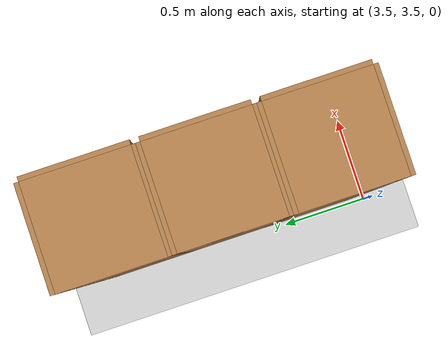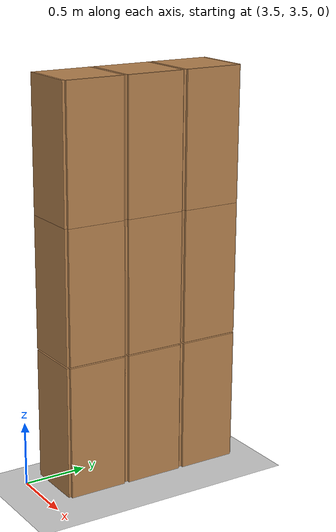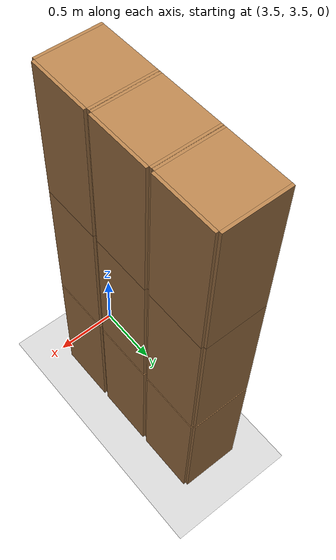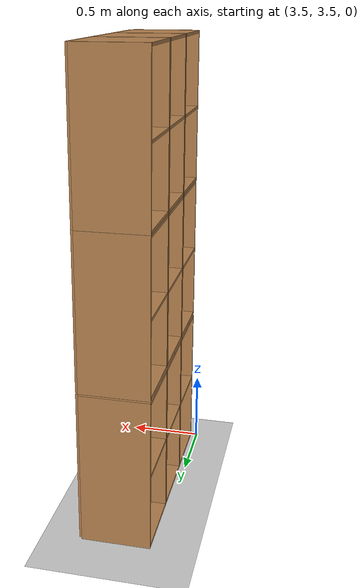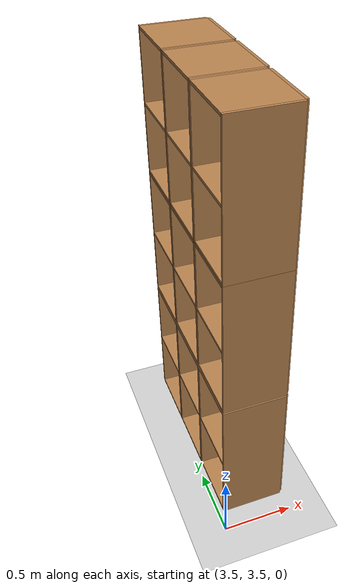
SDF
<sdf version="1.6">
 <world name="default">
  <model name="ground_plane">
   <static>1</static>
   <link name="link">
    <collision name="collision">
     <geometry><plane><normal>0 0 1</normal><size>100 100</size></plane></geometry>
     <surface>
      <contact><collide_bitmask>65535</collide_bitmask></contact>
      <friction><ode><mu>100</mu><mu2>50</mu2></ode></friction>
     </surface>
    </collision>
    <visual name="visual">
     <cast_shadows>0</cast_shadows>
     <geometry><plane><normal>0 0 1</normal><size>100 100</size></plane></geometry>
     <material>
      <script><uri>file://media/materials/scripts/gazebo.material</uri><name>Gazebo/Grey</name></script>
     </material>
    </visual>
   </link>
  </model>
  <model name="Locker18_clone_4_clone_1">
   <model name="Locker18">
    <model name="Locker3">
     <model name="cabinet">
      <static>1</static>
      <link name="cabinet_bottom_plate">
       <inertial>
        <pose>0 0 -1 0 -0 0</pose>
        <inertia><ixx>2.05</ixx><ixy>0</ixy><ixz>0</ixz><iyy>2.05</iyy><iyz>0</iyz><izz>2.05</izz></inertia>
        <mass>25</mass>
       </inertial>
       <collision name="cabinet_bottom_plate_geom">
        <pose>0 0 0.01 0 -0 0</pose>
        <geometry><box><size>0.45 0.45 0.02</size></box></geometry>
       </collision>
       <visual name="cabinet_bottom_plate_geom_visual">
        <pose>0 0 0.01 0 -0 0</pose>
        <geometry><box><size>0.45 0.45 0.02</size></box></geometry>
        <material>
         <script><uri>file://media/materials/scripts/gazebo.material</uri><name>Gazebo/Wood</name></script>
        </material>
       </visual>
       <collision name="cabinet_bottom_plate_geom_cabinet_back_plate">
        <pose>0.235 0 0.51 0 -0 0</pose>
        <geometry><box><size>0.02 0.45 1.02</size></box></geometry>
       </collision>
       <visual name="cabinet_bottom_plate_geom_cabinet_back_plate_visual">
        <pose>0.235 0 0.51 0 -0 0</pose>
        <geometry><box><size>0.02 0.45 1.02</size></box></geometry>
        <material>
         <script><uri>file://media/materials/scripts/gazebo.material</uri><name>Gazebo/Wood</name></script>
        </material>
       </visual>
       <collision name="cabinet_bottom_plate_geom_cabinet_left_plate">
        <pose>0 0.235 0.51 0 -0 0</pose>
        <geometry><box><size>0.45 0.02 1.02</size></box></geometry>
       </collision>
       <visual name="cabinet_bottom_plate_geom_cabinet_left_plate_visual">
        <pose>0 0.235 0.51 0 -0 0</pose>
        <geometry><box><size>0.45 0.02 1.02</size></box></geometry>
        <material>
         <script><uri>file://media/materials/scripts/gazebo.material</uri><name>Gazebo/Wood</name></script>
        </material>
       </visual>
       <collision name="cabinet_bottom_plate_geom_cabinet_middle_plate">
        <pose>0 0 0.51 0 -0 0</pose>
        <geometry><box><size>0.45 0.45 0.02</size></box></geometry>
       </collision>
       <visual name="cabinet_bottom_plate_geom_cabinet_middle_plate_visual">
        <pose>0 0 0.51 0 -0 0</pose>
        <geometry><box><size>0.45 0.45 0.02</size></box></geometry>
        <material>
         <script><uri>file://media/materials/scripts/gazebo.material</uri><name>Gazebo/Wood</name></script>
        </material>
       </visual>
       <collision name="cabinet_bottom_plate_geom_cabinet_right_plate">
        <pose>0 -0.235 0.51 0 -0 0</pose>
        <geometry><box><size>0.45 0.02 1.02</size></box></geometry>
       </collision>
       <visual name="cabinet_bottom_plate_geom_cabinet_right_plate_visual">
        <pose>0 -0.235 0.51 0 -0 0</pose>
        <geometry><box><size>0.45 0.02 1.02</size></box></geometry>
        <material>
         <script><uri>file://media/materials/scripts/gazebo.material</uri><name>Gazebo/Wood</name></script>
        </material>
       </visual>
       <collision name="cabinet_bottom_plate_geom_cabinet_top_plate">
        <pose>0 0 1.01 0 -0 0</pose>
        <geometry><box><size>0.45 0.45 0.02</size></box></geometry>
       </collision>
       <visual name="cabinet_bottom_plate_geom_cabinet_top_plate_visual">
        <pose>0 0 1.01 0 -0 0</pose>
        <geometry><box><size>0.45 0.45 0.02</size></box></geometry>
        <material>
         <script><uri>file://media/materials/scripts/gazebo.material</uri><name>Gazebo/Wood</name></script>
        </material>
       </visual>
      </link>
      <pose>-0.676968 1.45758 0 0 -0 0</pose>
     </model>
     <model name="cabinet_clone">
      <static>1</static>
      <link name="cabinet_bottom_plate">
       <inertial>
        <pose>0 0 -1 0 -0 0</pose>
        <inertia><ixx>2.05</ixx><ixy>0</ixy><ixz>0</ixz><iyy>2.05</iyy><iyz>0</iyz><izz>2.05</izz></inertia>
        <mass>25</mass>
       </inertial>
       <collision name="cabinet_bottom_plate_geom">
        <pose>0 0 0.01 0 -0 0</pose>
        <geometry><box><size>0.45 0.45 0.02</size></box></geometry>
       </collision>
       <visual name="cabinet_bottom_plate_geom_visual">
        <pose>0 0 0.01 0 -0 0</pose>
        <geometry><box><size>0.45 0.45 0.02</size></box></geometry>
        <material>
         <script><uri>file://media/materials/scripts/gazebo.material</uri><name>Gazebo/Wood</name></script>
        </material>
       </visual>
       <collision name="cabinet_bottom_plate_geom_cabinet_back_plate">
        <pose>0.235 0 0.51 0 -0 0</pose>
        <geometry><box><size>0.02 0.45 1.02</size></box></geometry>
       </collision>
       <visual name="cabinet_bottom_plate_geom_cabinet_back_plate_visual">
        <pose>0.235 0 0.51 0 -0 0</pose>
        <geometry><box><size>0.02 0.45 1.02</size></box></geometry>
        <material>
         <script><uri>file://media/materials/scripts/gazebo.material</uri><name>Gazebo/Wood</name></script>
        </material>
       </visual>
       <collision name="cabinet_bottom_plate_geom_cabinet_left_plate">
        <pose>0 0.235 0.51 0 -0 0</pose>
        <geometry><box><size>0.45 0.02 1.02</size></box></geometry>
       </collision>
       <visual name="cabinet_bottom_plate_geom_cabinet_left_plate_visual">
        <pose>0 0.235 0.51 0 -0 0</pose>
        <geometry><box><size>0.45 0.02 1.02</size></box></geometry>
        <material>
         <script><uri>file://media/materials/scripts/gazebo.material</uri><name>Gazebo/Wood</name></script>
        </material>
       </visual>
       <collision name="cabinet_bottom_plate_geom_cabinet_middle_plate">
        <pose>0 0 0.51 0 -0 0</pose>
        <geometry><box><size>0.45 0.45 0.02</size></box></geometry>
       </collision>
       <visual name="cabinet_bottom_plate_geom_cabinet_middle_plate_visual">
        <pose>0 0 0.51 0 -0 0</pose>
        <geometry><box><size>0.45 0.45 0.02</size></box></geometry>
        <material>
         <script><uri>file://media/materials/scripts/gazebo.material</uri><name>Gazebo/Wood</name></script>
        </material>
       </visual>
       <collision name="cabinet_bottom_plate_geom_cabinet_right_plate">
        <pose>0 -0.235 0.51 0 -0 0</pose>
        <geometry><box><size>0.45 0.02 1.02</size></box></geometry>
       </collision>
       <visual name="cabinet_bottom_plate_geom_cabinet_right_plate_visual">
        <pose>0 -0.235 0.51 0 -0 0</pose>
        <geometry><box><size>0.45 0.02 1.02</size></box></geometry>
        <material>
         <script><uri>file://media/materials/scripts/gazebo.material</uri><name>Gazebo/Wood</name></script>
        </material>
       </visual>
       <collision name="cabinet_bottom_plate_geom_cabinet_top_plate">
        <pose>0 0 1.01 0 -0 0</pose>
        <geometry><box><size>0.45 0.45 0.02</size></box></geometry>
       </collision>
       <visual name="cabinet_bottom_plate_geom_cabinet_top_plate_visual">
        <pose>0 0 1.01 0 -0 0</pose>
        <geometry><box><size>0.45 0.45 0.02</size></box></geometry>
        <material>
         <script><uri>file://media/materials/scripts/gazebo.material</uri><name>Gazebo/Wood</name></script>
        </material>
       </visual>
      </link>
      <pose>-0.676968 0.970971 0 0 -0 0</pose>
     </model>
     <model name="cabinet_clone_0">
      <static>1</static>
      <link name="cabinet_bottom_plate">
       <inertial>
        <pose>0 0 -1 0 -0 0</pose>
        <inertia><ixx>2.05</ixx><ixy>0</ixy><ixz>0</ixz><iyy>2.05</iyy><iyz>0</iyz><izz>2.05</izz></inertia>
        <mass>25</mass>
       </inertial>
       <collision name="cabinet_bottom_plate_geom">
        <pose>0 0 0.01 0 -0 0</pose>
        <geometry><box><size>0.45 0.45 0.02</size></box></geometry>
       </collision>
       <visual name="cabinet_bottom_plate_geom_visual">
        <pose>0 0 0.01 0 -0 0</pose>
        <geometry><box><size>0.45 0.45 0.02</size></box></geometry>
        <material>
         <script><uri>file://media/materials/scripts/gazebo.material</uri><name>Gazebo/Wood</name></script>
        </material>
       </visual>
       <collision name="cabinet_bottom_plate_geom_cabinet_back_plate">
        <pose>0.235 0 0.51 0 -0 0</pose>
        <geometry><box><size>0.02 0.45 1.02</size></box></geometry>
       </collision>
       <visual name="cabinet_bottom_plate_geom_cabinet_back_plate_visual">
        <pose>0.235 0 0.51 0 -0 0</pose>
        <geometry><box><size>0.02 0.45 1.02</size></box></geometry>
        <material>
         <script><uri>file://media/materials/scripts/gazebo.material</uri><name>Gazebo/Wood</name></script>
        </material>
       </visual>
       <collision name="cabinet_bottom_plate_geom_cabinet_left_plate">
        <pose>0 0.235 0.51 0 -0 0</pose>
        <geometry><box><size>0.45 0.02 1.02</size></box></geometry>
       </collision>
       <visual name="cabinet_bottom_plate_geom_cabinet_left_plate_visual">
        <pose>0 0.235 0.51 0 -0 0</pose>
        <geometry><box><size>0.45 0.02 1.02</size></box></geometry>
        <material>
         <script><uri>file://media/materials/scripts/gazebo.material</uri><name>Gazebo/Wood</name></script>
        </material>
       </visual>
       <collision name="cabinet_bottom_plate_geom_cabinet_middle_plate">
        <pose>0 0 0.51 0 -0 0</pose>
        <geometry><box><size>0.45 0.45 0.02</size></box></geometry>
       </collision>
       <visual name="cabinet_bottom_plate_geom_cabinet_middle_plate_visual">
        <pose>0 0 0.51 0 -0 0</pose>
        <geometry><box><size>0.45 0.45 0.02</size></box></geometry>
        <material>
         <script><uri>file://media/materials/scripts/gazebo.material</uri><name>Gazebo/Wood</name></script>
        </material>
       </visual>
       <collision name="cabinet_bottom_plate_geom_cabinet_right_plate">
        <pose>0 -0.235 0.51 0 -0 0</pose>
        <geometry><box><size>0.45 0.02 1.02</size></box></geometry>
       </collision>
       <visual name="cabinet_bottom_plate_geom_cabinet_right_plate_visual">
        <pose>0 -0.235 0.51 0 -0 0</pose>
        <geometry><box><size>0.45 0.02 1.02</size></box></geometry>
        <material>
         <script><uri>file://media/materials/scripts/gazebo.material</uri><name>Gazebo/Wood</name></script>
        </material>
       </visual>
       <collision name="cabinet_bottom_plate_geom_cabinet_top_plate">
        <pose>0 0 1.01 0 -0 0</pose>
        <geometry><box><size>0.45 0.45 0.02</size></box></geometry>
       </collision>
       <visual name="cabinet_bottom_plate_geom_cabinet_top_plate_visual">
        <pose>0 0 1.01 0 -0 0</pose>
        <geometry><box><size>0.45 0.45 0.02</size></box></geometry>
        <material>
         <script><uri>file://media/materials/scripts/gazebo.material</uri><name>Gazebo/Wood</name></script>
        </material>
       </visual>
      </link>
      <pose>-0.676968 0.48391 0 0 -0 0</pose>
     </model>
     <static>0</static>
     <pose>0 3e-06 -1.02763 0 -0 0</pose>
    </model>
    <model name="Locker3_clone">
     <model name="cabinet">
      <static>1</static>
      <link name="cabinet_bottom_plate">
       <inertial>
        <pose>0 0 -1 0 -0 0</pose>
        <inertia><ixx>2.05</ixx><ixy>0</ixy><ixz>0</ixz><iyy>2.05</iyy><iyz>0</iyz><izz>2.05</izz></inertia>
        <mass>25</mass>
       </inertial>
       <collision name="cabinet_bottom_plate_geom">
        <pose>0 0 0.01 0 -0 0</pose>
        <geometry><box><size>0.45 0.45 0.02</size></box></geometry>
       </collision>
       <visual name="cabinet_bottom_plate_geom_visual">
        <pose>0 0 0.01 0 -0 0</pose>
        <geometry><box><size>0.45 0.45 0.02</size></box></geometry>
        <material>
         <script><uri>file://media/materials/scripts/gazebo.material</uri><name>Gazebo/Wood</name></script>
        </material>
       </visual>
       <collision name="cabinet_bottom_plate_geom_cabinet_back_plate">
        <pose>0.235 0 0.51 0 -0 0</pose>
        <geometry><box><size>0.02 0.45 1.02</size></box></geometry>
       </collision>
       <visual name="cabinet_bottom_plate_geom_cabinet_back_plate_visual">
        <pose>0.235 0 0.51 0 -0 0</pose>
        <geometry><box><size>0.02 0.45 1.02</size></box></geometry>
        <material>
         <script><uri>file://media/materials/scripts/gazebo.material</uri><name>Gazebo/Wood</name></script>
        </material>
       </visual>
       <collision name="cabinet_bottom_plate_geom_cabinet_left_plate">
        <pose>0 0.235 0.51 0 -0 0</pose>
        <geometry><box><size>0.45 0.02 1.02</size></box></geometry>
       </collision>
       <visual name="cabinet_bottom_plate_geom_cabinet_left_plate_visual">
        <pose>0 0.235 0.51 0 -0 0</pose>
        <geometry><box><size>0.45 0.02 1.02</size></box></geometry>
        <material>
         <script><uri>file://media/materials/scripts/gazebo.material</uri><name>Gazebo/Wood</name></script>
        </material>
       </visual>
       <collision name="cabinet_bottom_plate_geom_cabinet_middle_plate">
        <pose>0 0 0.51 0 -0 0</pose>
        <geometry><box><size>0.45 0.45 0.02</size></box></geometry>
       </collision>
       <visual name="cabinet_bottom_plate_geom_cabinet_middle_plate_visual">
        <pose>0 0 0.51 0 -0 0</pose>
        <geometry><box><size>0.45 0.45 0.02</size></box></geometry>
        <material>
         <script><uri>file://media/materials/scripts/gazebo.material</uri><name>Gazebo/Wood</name></script>
        </material>
       </visual>
       <collision name="cabinet_bottom_plate_geom_cabinet_right_plate">
        <pose>0 -0.235 0.51 0 -0 0</pose>
        <geometry><box><size>0.45 0.02 1.02</size></box></geometry>
       </collision>
       <visual name="cabinet_bottom_plate_geom_cabinet_right_plate_visual">
        <pose>0 -0.235 0.51 0 -0 0</pose>
        <geometry><box><size>0.45 0.02 1.02</size></box></geometry>
        <material>
         <script><uri>file://media/materials/scripts/gazebo.material</uri><name>Gazebo/Wood</name></script>
        </material>
       </visual>
       <collision name="cabinet_bottom_plate_geom_cabinet_top_plate">
        <pose>0 0 1.01 0 -0 0</pose>
        <geometry><box><size>0.45 0.45 0.02</size></box></geometry>
       </collision>
       <visual name="cabinet_bottom_plate_geom_cabinet_top_plate_visual">
        <pose>0 0 1.01 0 -0 0</pose>
        <geometry><box><size>0.45 0.45 0.02</size></box></geometry>
        <material>
         <script><uri>file://media/materials/scripts/gazebo.material</uri><name>Gazebo/Wood</name></script>
        </material>
       </visual>
      </link>
      <pose>-0.676968 1.45758 0 0 -0 0</pose>
     </model>
     <model name="cabinet_clone">
      <static>1</static>
      <link name="cabinet_bottom_plate">
       <inertial>
        <pose>0 0 -1 0 -0 0</pose>
        <inertia><ixx>2.05</ixx><ixy>0</ixy><ixz>0</ixz><iyy>2.05</iyy><iyz>0</iyz><izz>2.05</izz></inertia>
        <mass>25</mass>
       </inertial>
       <collision name="cabinet_bottom_plate_geom">
        <pose>0 0 0.01 0 -0 0</pose>
        <geometry><box><size>0.45 0.45 0.02</size></box></geometry>
       </collision>
       <visual name="cabinet_bottom_plate_geom_visual">
        <pose>0 0 0.01 0 -0 0</pose>
        <geometry><box><size>0.45 0.45 0.02</size></box></geometry>
        <material>
         <script><uri>file://media/materials/scripts/gazebo.material</uri><name>Gazebo/Wood</name></script>
        </material>
       </visual>
       <collision name="cabinet_bottom_plate_geom_cabinet_back_plate">
        <pose>0.235 0 0.51 0 -0 0</pose>
        <geometry><box><size>0.02 0.45 1.02</size></box></geometry>
       </collision>
       <visual name="cabinet_bottom_plate_geom_cabinet_back_plate_visual">
        <pose>0.235 0 0.51 0 -0 0</pose>
        <geometry><box><size>0.02 0.45 1.02</size></box></geometry>
        <material>
         <script><uri>file://media/materials/scripts/gazebo.material</uri><name>Gazebo/Wood</name></script>
        </material>
       </visual>
       <collision name="cabinet_bottom_plate_geom_cabinet_left_plate">
        <pose>0 0.235 0.51 0 -0 0</pose>
        <geometry><box><size>0.45 0.02 1.02</size></box></geometry>
       </collision>
       <visual name="cabinet_bottom_plate_geom_cabinet_left_plate_visual">
        <pose>0 0.235 0.51 0 -0 0</pose>
        <geometry><box><size>0.45 0.02 1.02</size></box></geometry>
        <material>
         <script><uri>file://media/materials/scripts/gazebo.material</uri><name>Gazebo/Wood</name></script>
        </material>
       </visual>
       <collision name="cabinet_bottom_plate_geom_cabinet_middle_plate">
        <pose>0 0 0.51 0 -0 0</pose>
        <geometry><box><size>0.45 0.45 0.02</size></box></geometry>
       </collision>
       <visual name="cabinet_bottom_plate_geom_cabinet_middle_plate_visual">
        <pose>0 0 0.51 0 -0 0</pose>
        <geometry><box><size>0.45 0.45 0.02</size></box></geometry>
        <material>
         <script><uri>file://media/materials/scripts/gazebo.material</uri><name>Gazebo/Wood</name></script>
        </material>
       </visual>
       <collision name="cabinet_bottom_plate_geom_cabinet_right_plate">
        <pose>0 -0.235 0.51 0 -0 0</pose>
        <geometry><box><size>0.45 0.02 1.02</size></box></geometry>
       </collision>
       <visual name="cabinet_bottom_plate_geom_cabinet_right_plate_visual">
        <pose>0 -0.235 0.51 0 -0 0</pose>
        <geometry><box><size>0.45 0.02 1.02</size></box></geometry>
        <material>
         <script><uri>file://media/materials/scripts/gazebo.material</uri><name>Gazebo/Wood</name></script>
        </material>
       </visual>
       <collision name="cabinet_bottom_plate_geom_cabinet_top_plate">
        <pose>0 0 1.01 0 -0 0</pose>
        <geometry><box><size>0.45 0.45 0.02</size></box></geometry>
       </collision>
       <visual name="cabinet_bottom_plate_geom_cabinet_top_plate_visual">
        <pose>0 0 1.01 0 -0 0</pose>
        <geometry><box><size>0.45 0.45 0.02</size></box></geometry>
        <material>
         <script><uri>file://media/materials/scripts/gazebo.material</uri><name>Gazebo/Wood</name></script>
        </material>
       </visual>
      </link>
      <pose>-0.676968 0.970971 0 0 -0 0</pose>
     </model>
     <model name="cabinet_clone_0">
      <static>1</static>
      <link name="cabinet_bottom_plate">
       <inertial>
        <pose>0 0 -1 0 -0 0</pose>
        <inertia><ixx>2.05</ixx><ixy>0</ixy><ixz>0</ixz><iyy>2.05</iyy><iyz>0</iyz><izz>2.05</izz></inertia>
        <mass>25</mass>
       </inertial>
       <collision name="cabinet_bottom_plate_geom">
        <pose>0 0 0.01 0 -0 0</pose>
        <geometry><box><size>0.45 0.45 0.02</size></box></geometry>
       </collision>
       <visual name="cabinet_bottom_plate_geom_visual">
        <pose>0 0 0.01 0 -0 0</pose>
        <geometry><box><size>0.45 0.45 0.02</size></box></geometry>
        <material>
         <script><uri>file://media/materials/scripts/gazebo.material</uri><name>Gazebo/Wood</name></script>
        </material>
       </visual>
       <collision name="cabinet_bottom_plate_geom_cabinet_back_plate">
        <pose>0.235 0 0.51 0 -0 0</pose>
        <geometry><box><size>0.02 0.45 1.02</size></box></geometry>
       </collision>
       <visual name="cabinet_bottom_plate_geom_cabinet_back_plate_visual">
        <pose>0.235 0 0.51 0 -0 0</pose>
        <geometry><box><size>0.02 0.45 1.02</size></box></geometry>
        <material>
         <script><uri>file://media/materials/scripts/gazebo.material</uri><name>Gazebo/Wood</name></script>
        </material>
       </visual>
       <collision name="cabinet_bottom_plate_geom_cabinet_left_plate">
        <pose>0 0.235 0.51 0 -0 0</pose>
        <geometry><box><size>0.45 0.02 1.02</size></box></geometry>
       </collision>
       <visual name="cabinet_bottom_plate_geom_cabinet_left_plate_visual">
        <pose>0 0.235 0.51 0 -0 0</pose>
        <geometry><box><size>0.45 0.02 1.02</size></box></geometry>
        <material>
         <script><uri>file://media/materials/scripts/gazebo.material</uri><name>Gazebo/Wood</name></script>
        </material>
       </visual>
       <collision name="cabinet_bottom_plate_geom_cabinet_middle_plate">
        <pose>0 0 0.51 0 -0 0</pose>
        <geometry><box><size>0.45 0.45 0.02</size></box></geometry>
       </collision>
       <visual name="cabinet_bottom_plate_geom_cabinet_middle_plate_visual">
        <pose>0 0 0.51 0 -0 0</pose>
        <geometry><box><size>0.45 0.45 0.02</size></box></geometry>
        <material>
         <script><uri>file://media/materials/scripts/gazebo.material</uri><name>Gazebo/Wood</name></script>
        </material>
       </visual>
       <collision name="cabinet_bottom_plate_geom_cabinet_right_plate">
        <pose>0 -0.235 0.51 0 -0 0</pose>
        <geometry><box><size>0.45 0.02 1.02</size></box></geometry>
       </collision>
       <visual name="cabinet_bottom_plate_geom_cabinet_right_plate_visual">
        <pose>0 -0.235 0.51 0 -0 0</pose>
        <geometry><box><size>0.45 0.02 1.02</size></box></geometry>
        <material>
         <script><uri>file://media/materials/scripts/gazebo.material</uri><name>Gazebo/Wood</name></script>
        </material>
       </visual>
       <collision name="cabinet_bottom_plate_geom_cabinet_top_plate">
        <pose>0 0 1.01 0 -0 0</pose>
        <geometry><box><size>0.45 0.45 0.02</size></box></geometry>
       </collision>
       <visual name="cabinet_bottom_plate_geom_cabinet_top_plate_visual">
        <pose>0 0 1.01 0 -0 0</pose>
        <geometry><box><size>0.45 0.45 0.02</size></box></geometry>
        <material>
         <script><uri>file://media/materials/scripts/gazebo.material</uri><name>Gazebo/Wood</name></script>
        </material>
       </visual>
      </link>
      <pose>-0.676968 0.48391 0 0 -0 0</pose>
     </model>
     <static>0</static>
     <pose>0 3e-06 0.003717 0 -0 0</pose>
    </model>
    <model name="Locker3_clone_clone">
     <model name="cabinet">
      <static>1</static>
      <link name="cabinet_bottom_plate">
       <inertial>
        <pose>0 0 -1 0 -0 0</pose>
        <inertia><ixx>2.05</ixx><ixy>0</ixy><ixz>0</ixz><iyy>2.05</iyy><iyz>0</iyz><izz>2.05</izz></inertia>
        <mass>25</mass>
       </inertial>
       <collision name="cabinet_bottom_plate_geom">
        <pose>0 0 0.01 0 -0 0</pose>
        <geometry><box><size>0.45 0.45 0.02</size></box></geometry>
       </collision>
       <visual name="cabinet_bottom_plate_geom_visual">
        <pose>0 0 0.01 0 -0 0</pose>
        <geometry><box><size>0.45 0.45 0.02</size></box></geometry>
        <material>
         <script><uri>file://media/materials/scripts/gazebo.material</uri><name>Gazebo/Wood</name></script>
        </material>
       </visual>
       <collision name="cabinet_bottom_plate_geom_cabinet_back_plate">
        <pose>0.235 0 0.51 0 -0 0</pose>
        <geometry><box><size>0.02 0.45 1.02</size></box></geometry>
       </collision>
       <visual name="cabinet_bottom_plate_geom_cabinet_back_plate_visual">
        <pose>0.235 0 0.51 0 -0 0</pose>
        <geometry><box><size>0.02 0.45 1.02</size></box></geometry>
        <material>
         <script><uri>file://media/materials/scripts/gazebo.material</uri><name>Gazebo/Wood</name></script>
        </material>
       </visual>
       <collision name="cabinet_bottom_plate_geom_cabinet_left_plate">
        <pose>0 0.235 0.51 0 -0 0</pose>
        <geometry><box><size>0.45 0.02 1.02</size></box></geometry>
       </collision>
       <visual name="cabinet_bottom_plate_geom_cabinet_left_plate_visual">
        <pose>0 0.235 0.51 0 -0 0</pose>
        <geometry><box><size>0.45 0.02 1.02</size></box></geometry>
        <material>
         <script><uri>file://media/materials/scripts/gazebo.material</uri><name>Gazebo/Wood</name></script>
        </material>
       </visual>
       <collision name="cabinet_bottom_plate_geom_cabinet_middle_plate">
        <pose>0 0 0.51 0 -0 0</pose>
        <geometry><box><size>0.45 0.45 0.02</size></box></geometry>
       </collision>
       <visual name="cabinet_bottom_plate_geom_cabinet_middle_plate_visual">
        <pose>0 0 0.51 0 -0 0</pose>
        <geometry><box><size>0.45 0.45 0.02</size></box></geometry>
        <material>
         <script><uri>file://media/materials/scripts/gazebo.material</uri><name>Gazebo/Wood</name></script>
        </material>
       </visual>
       <collision name="cabinet_bottom_plate_geom_cabinet_right_plate">
        <pose>0 -0.235 0.51 0 -0 0</pose>
        <geometry><box><size>0.45 0.02 1.02</size></box></geometry>
       </collision>
       <visual name="cabinet_bottom_plate_geom_cabinet_right_plate_visual">
        <pose>0 -0.235 0.51 0 -0 0</pose>
        <geometry><box><size>0.45 0.02 1.02</size></box></geometry>
        <material>
         <script><uri>file://media/materials/scripts/gazebo.material</uri><name>Gazebo/Wood</name></script>
        </material>
       </visual>
       <collision name="cabinet_bottom_plate_geom_cabinet_top_plate">
        <pose>0 0 1.01 0 -0 0</pose>
        <geometry><box><size>0.45 0.45 0.02</size></box></geometry>
       </collision>
       <visual name="cabinet_bottom_plate_geom_cabinet_top_plate_visual">
        <pose>0 0 1.01 0 -0 0</pose>
        <geometry><box><size>0.45 0.45 0.02</size></box></geometry>
        <material>
         <script><uri>file://media/materials/scripts/gazebo.material</uri><name>Gazebo/Wood</name></script>
        </material>
       </visual>
      </link>
      <pose>-0.676968 1.45758 0 0 -0 0</pose>
     </model>
     <model name="cabinet_clone">
      <static>1</static>
      <link name="cabinet_bottom_plate">
       <inertial>
        <pose>0 0 -1 0 -0 0</pose>
        <inertia><ixx>2.05</ixx><ixy>0</ixy><ixz>0</ixz><iyy>2.05</iyy><iyz>0</iyz><izz>2.05</izz></inertia>
        <mass>25</mass>
       </inertial>
       <collision name="cabinet_bottom_plate_geom">
        <pose>0 0 0.01 0 -0 0</pose>
        <geometry><box><size>0.45 0.45 0.02</size></box></geometry>
       </collision>
       <visual name="cabinet_bottom_plate_geom_visual">
        <pose>0 0 0.01 0 -0 0</pose>
        <geometry><box><size>0.45 0.45 0.02</size></box></geometry>
        <material>
         <script><uri>file://media/materials/scripts/gazebo.material</uri><name>Gazebo/Wood</name></script>
        </material>
       </visual>
       <collision name="cabinet_bottom_plate_geom_cabinet_back_plate">
        <pose>0.235 0 0.51 0 -0 0</pose>
        <geometry><box><size>0.02 0.45 1.02</size></box></geometry>
       </collision>
       <visual name="cabinet_bottom_plate_geom_cabinet_back_plate_visual">
        <pose>0.235 0 0.51 0 -0 0</pose>
        <geometry><box><size>0.02 0.45 1.02</size></box></geometry>
        <material>
         <script><uri>file://media/materials/scripts/gazebo.material</uri><name>Gazebo/Wood</name></script>
        </material>
       </visual>
       <collision name="cabinet_bottom_plate_geom_cabinet_left_plate">
        <pose>0 0.235 0.51 0 -0 0</pose>
        <geometry><box><size>0.45 0.02 1.02</size></box></geometry>
       </collision>
       <visual name="cabinet_bottom_plate_geom_cabinet_left_plate_visual">
        <pose>0 0.235 0.51 0 -0 0</pose>
        <geometry><box><size>0.45 0.02 1.02</size></box></geometry>
        <material>
         <script><uri>file://media/materials/scripts/gazebo.material</uri><name>Gazebo/Wood</name></script>
        </material>
       </visual>
       <collision name="cabinet_bottom_plate_geom_cabinet_middle_plate">
        <pose>0 0 0.51 0 -0 0</pose>
        <geometry><box><size>0.45 0.45 0.02</size></box></geometry>
       </collision>
       <visual name="cabinet_bottom_plate_geom_cabinet_middle_plate_visual">
        <pose>0 0 0.51 0 -0 0</pose>
        <geometry><box><size>0.45 0.45 0.02</size></box></geometry>
        <material>
         <script><uri>file://media/materials/scripts/gazebo.material</uri><name>Gazebo/Wood</name></script>
        </material>
       </visual>
       <collision name="cabinet_bottom_plate_geom_cabinet_right_plate">
        <pose>0 -0.235 0.51 0 -0 0</pose>
        <geometry><box><size>0.45 0.02 1.02</size></box></geometry>
       </collision>
       <visual name="cabinet_bottom_plate_geom_cabinet_right_plate_visual">
        <pose>0 -0.235 0.51 0 -0 0</pose>
        <geometry><box><size>0.45 0.02 1.02</size></box></geometry>
        <material>
         <script><uri>file://media/materials/scripts/gazebo.material</uri><name>Gazebo/Wood</name></script>
        </material>
       </visual>
       <collision name="cabinet_bottom_plate_geom_cabinet_top_plate">
        <pose>0 0 1.01 0 -0 0</pose>
        <geometry><box><size>0.45 0.45 0.02</size></box></geometry>
       </collision>
       <visual name="cabinet_bottom_plate_geom_cabinet_top_plate_visual">
        <pose>0 0 1.01 0 -0 0</pose>
        <geometry><box><size>0.45 0.45 0.02</size></box></geometry>
        <material>
         <script><uri>file://media/materials/scripts/gazebo.material</uri><name>Gazebo/Wood</name></script>
        </material>
       </visual>
      </link>
      <pose>-0.676968 0.970971 0 0 -0 0</pose>
     </model>
     <model name="cabinet_clone_0">
      <static>1</static>
      <link name="cabinet_bottom_plate">
       <inertial>
        <pose>0 0 -1 0 -0 0</pose>
        <inertia><ixx>2.05</ixx><ixy>0</ixy><ixz>0</ixz><iyy>2.05</iyy><iyz>0</iyz><izz>2.05</izz></inertia>
        <mass>25</mass>
       </inertial>
       <collision name="cabinet_bottom_plate_geom">
        <pose>0 0 0.01 0 -0 0</pose>
        <geometry><box><size>0.45 0.45 0.02</size></box></geometry>
       </collision>
       <visual name="cabinet_bottom_plate_geom_visual">
        <pose>0 0 0.01 0 -0 0</pose>
        <geometry><box><size>0.45 0.45 0.02</size></box></geometry>
        <material>
         <script><uri>file://media/materials/scripts/gazebo.material</uri><name>Gazebo/Wood</name></script>
        </material>
       </visual>
       <collision name="cabinet_bottom_plate_geom_cabinet_back_plate">
        <pose>0.235 0 0.51 0 -0 0</pose>
        <geometry><box><size>0.02 0.45 1.02</size></box></geometry>
       </collision>
       <visual name="cabinet_bottom_plate_geom_cabinet_back_plate_visual">
        <pose>0.235 0 0.51 0 -0 0</pose>
        <geometry><box><size>0.02 0.45 1.02</size></box></geometry>
        <material>
         <script><uri>file://media/materials/scripts/gazebo.material</uri><name>Gazebo/Wood</name></script>
        </material>
       </visual>
       <collision name="cabinet_bottom_plate_geom_cabinet_left_plate">
        <pose>0 0.235 0.51 0 -0 0</pose>
        <geometry><box><size>0.45 0.02 1.02</size></box></geometry>
       </collision>
       <visual name="cabinet_bottom_plate_geom_cabinet_left_plate_visual">
        <pose>0 0.235 0.51 0 -0 0</pose>
        <geometry><box><size>0.45 0.02 1.02</size></box></geometry>
        <material>
         <script><uri>file://media/materials/scripts/gazebo.material</uri><name>Gazebo/Wood</name></script>
        </material>
       </visual>
       <collision name="cabinet_bottom_plate_geom_cabinet_middle_plate">
        <pose>0 0 0.51 0 -0 0</pose>
        <geometry><box><size>0.45 0.45 0.02</size></box></geometry>
       </collision>
       <visual name="cabinet_bottom_plate_geom_cabinet_middle_plate_visual">
        <pose>0 0 0.51 0 -0 0</pose>
        <geometry><box><size>0.45 0.45 0.02</size></box></geometry>
        <material>
         <script><uri>file://media/materials/scripts/gazebo.material</uri><name>Gazebo/Wood</name></script>
        </material>
       </visual>
       <collision name="cabinet_bottom_plate_geom_cabinet_right_plate">
        <pose>0 -0.235 0.51 0 -0 0</pose>
        <geometry><box><size>0.45 0.02 1.02</size></box></geometry>
       </collision>
       <visual name="cabinet_bottom_plate_geom_cabinet_right_plate_visual">
        <pose>0 -0.235 0.51 0 -0 0</pose>
        <geometry><box><size>0.45 0.02 1.02</size></box></geometry>
        <material>
         <script><uri>file://media/materials/scripts/gazebo.material</uri><name>Gazebo/Wood</name></script>
        </material>
       </visual>
       <collision name="cabinet_bottom_plate_geom_cabinet_top_plate">
        <pose>0 0 1.01 0 -0 0</pose>
        <geometry><box><size>0.45 0.45 0.02</size></box></geometry>
       </collision>
       <visual name="cabinet_bottom_plate_geom_cabinet_top_plate_visual">
        <pose>0 0 1.01 0 -0 0</pose>
        <geometry><box><size>0.45 0.45 0.02</size></box></geometry>
        <material>
         <script><uri>file://media/materials/scripts/gazebo.material</uri><name>Gazebo/Wood</name></script>
        </material>
       </visual>
      </link>
      <pose>-0.676968 0.48391 0 0 -0 0</pose>
     </model>
     <static>0</static>
     <pose>0 3e-06 1.02391 0 -0 0</pose>
    </model>
    <static>0</static>
    <pose>-0 4e-06 4e-06 0 -0 0</pose>
   </model>
   <static>0</static>
   <pose>4.42561 3.36886 1.08672 0 -0 0</pose>
  </model>
 </world>
</sdf>
